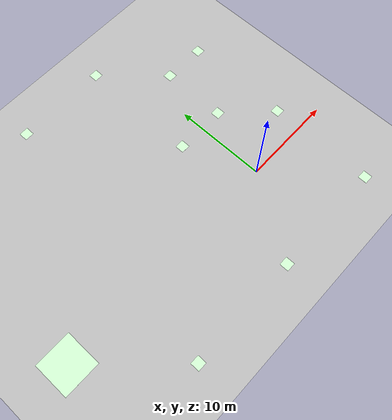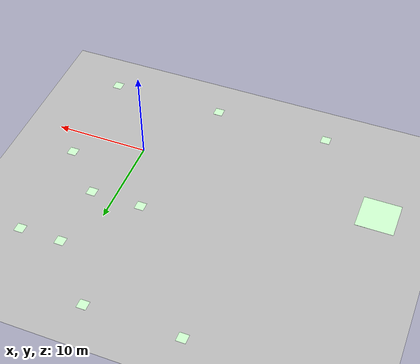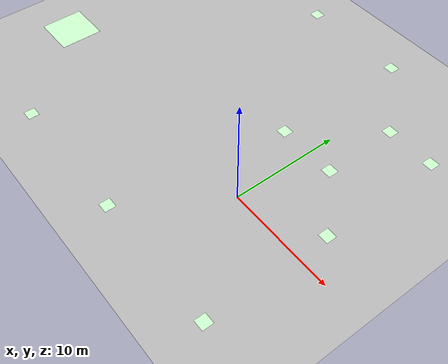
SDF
<sdf version="1.8">
 <world name="empty">
  <physics name="4ms" type="ignored">
   <max_step_size>0.004</max_step_size>
   <real_time_factor>1.0</real_time_factor>
  </physics>
  <plugin filename="gz-sim-physics-system" name="gz::sim::systems::Physics"/>
  <plugin filename="gz-sim-user-commands-system" name="gz::sim::systems::UserCommands"/>
  <plugin filename="gz-sim-scene-broadcaster-system" name="gz::sim::systems::SceneBroadcaster"/>
  <plugin filename="gz-sim-sensors-system" name="gz::sim::systems::Sensors">
   <render_engine>ogre2</render_engine>
  </plugin>
  <light type="directional" name="sun">
   <pose>0 0 10 0 0 0</pose>
   <diffuse>0.8 0.8 0.8 1</diffuse>
   <specular>0.2 0.2 0.2 1</specular>
   <attenuation>
    <range>1000</range>
    <constant>0.9</constant>
    <linear>0.01</linear>
    <quadratic>0.001</quadratic>
   </attenuation>
   <direction>-0.5 0.1 -0.9</direction>
  </light>
  <include><uri>model://arrow</uri><name>arrow_1</name><pose>-18 -8.5 0.1 0 0 0</pose></include>
  <include><uri>model://arrow</uri><name>arrow_2</name><pose>-5.5 -8.5 0.1 0 0 0</pose></include>
  <include><uri>model://arrow</uri><name>arrow_3</name><pose>7 -8.5 0.1 0 0 1.57</pose></include>
  <include><uri>model://arrow</uri><name>arrow_4</name><pose>7 3 0.1 0 0 1.57</pose></include>
  <include><uri>model://arrow</uri><name>arrow_5</name><pose>7 14.5 0.1 0 0 3.14</pose></include>
  <include><uri>model://arrow</uri><name>arrow_6</name><pose>2.5 14.5 0.1 0 0 4.71</pose></include>
  <include><uri>model://arrow</uri><name>arrow_7</name><pose>2.5 7.5 0.1 0 0 3.14</pose></include>
  <include><uri>model://arrow</uri><name>arrow_8</name><pose>-3 7.5 0.1 0 0 1.57</pose></include>
  <include><uri>model://arrow</uri><name>arrow_9</name><pose>-3 20.5 0.1 0 0 3.14</pose></include>
  <include><uri>model://arrow</uri><name>arrow_10</name><pose>-13 20.5 0.1 0 0 3.14</pose></include>
  <include><uri>model://grass_plane</uri></include>
  <include><name>logo</name><uri>model://logoJdeRobot</uri><pose>-26.0 0.0 0.0 0.0 0.0 0.0</pose></include>
 </world>
</sdf>

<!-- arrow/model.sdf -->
<sdf version="1.4">
  <model name="arrow">
    <static>true</static>
    <link name="link">
      <collision name="collision">
        <geometry>
          <plane>
            <normal>0 0 1</normal>
            <size>1 1</size>
          </plane>
        </geometry>
        <surface>
          <friction>
            <ode>
              <mu>0.5</mu>
              <mu2>.5</mu2>
            </ode>
          </friction>
        </surface>
      </collision>

      <visual name="visual_0">
        <pose>0 0 0 0 0 0</pose>
        <cast_shadows>false</cast_shadows>
        <geometry>
          <plane>
            <normal>0 0 1</normal>
            <size>1 1</size>
          </plane>
        </geometry>
        <material>
          <ambient>0.8 1.0 0.8 1.0</ambient>
          <diffuse>0.8 1.0 0.8 1.0</diffuse>
          <specular>0.1 0.1 0.1 1.0</specular>
          <pbr>
            <metal>
              <albedo_map>model://arrow/materials/textures/arrow_black.png</albedo_map>
            </metal>
          </pbr>
        </material>
      </visual>
    </link>
  </model>
</sdf>

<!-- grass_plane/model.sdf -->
<sdf version="1.4">
  <model name="grass_plane">
    <static>true</static>
    <link name="link">
      <collision name="collision">
        <geometry>
          <plane>
            <normal>0 0 1</normal>
            <size>750 750</size>
          </plane>
        </geometry>
        <surface>
          <friction>
            <ode>
              <mu>0.5</mu>
              <mu2>.5</mu2>
            </ode>
          </friction>
        </surface>
      </collision>

      <visual name="visual_0">
        <pose>2 -5 0 0 0 0</pose>

        <cast_shadows>false</cast_shadows>
        <geometry>
          <mesh>
            <uri>model://grass_plane/meshes/grass_plane.dae</uri>
            <scale>3 3 1</scale>
          </mesh>
        </geometry>
      </visual>
    </link>
  </model>
</sdf>

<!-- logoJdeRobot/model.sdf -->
<sdf version="1.6">
  <model name="logoJdeRobot">
    <static>true</static>
    <link name="link">
      <collision name="collision">
        <geometry>
          <plane>
            <normal>0 0 1</normal>
            <size>1 1</size>
          </plane>
        </geometry>
        <surface>
          <friction>
            <ode>
              <mu>0.5</mu>
              <mu2>.5</mu2>
            </ode>
          </friction>
        </surface>
      </collision>

      <visual name="visual_0">
        <pose>0 0 0.1 0 0 0</pose>

        <cast_shadows>false</cast_shadows>
        <geometry>
          <plane>
            <normal>0 0 1</normal>
            <size>4 4</size>
          </plane>
        </geometry>
        <material>
          <ambient>0.8 1.0 0.8 1.0</ambient>
          <diffuse>0.8 1.0 0.8 1.0</diffuse>
          <specular>0.1 0.1 0.1 1.0</specular>
          <pbr>
            <metal>
              <albedo_map>
                model://logoJdeRobot/materials/textures/logoJdeRobot.png</albedo_map>
            </metal>
          </pbr>
        </material>
      </visual>
    </link>
  </model>
</sdf>
